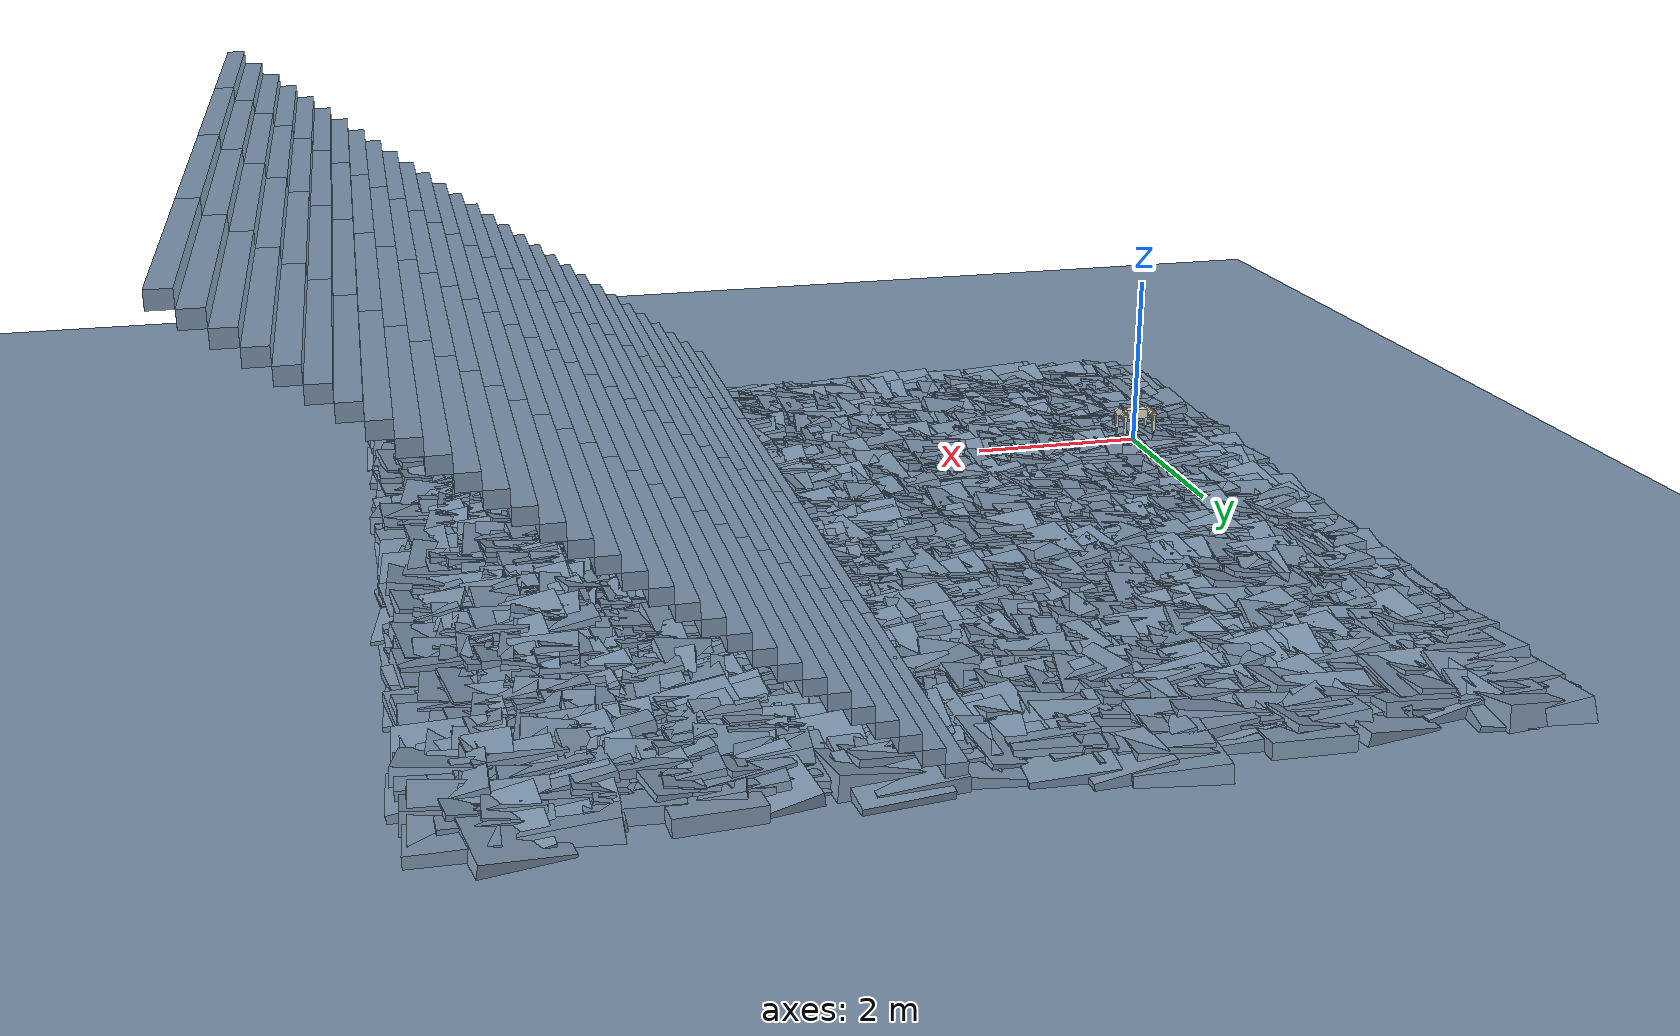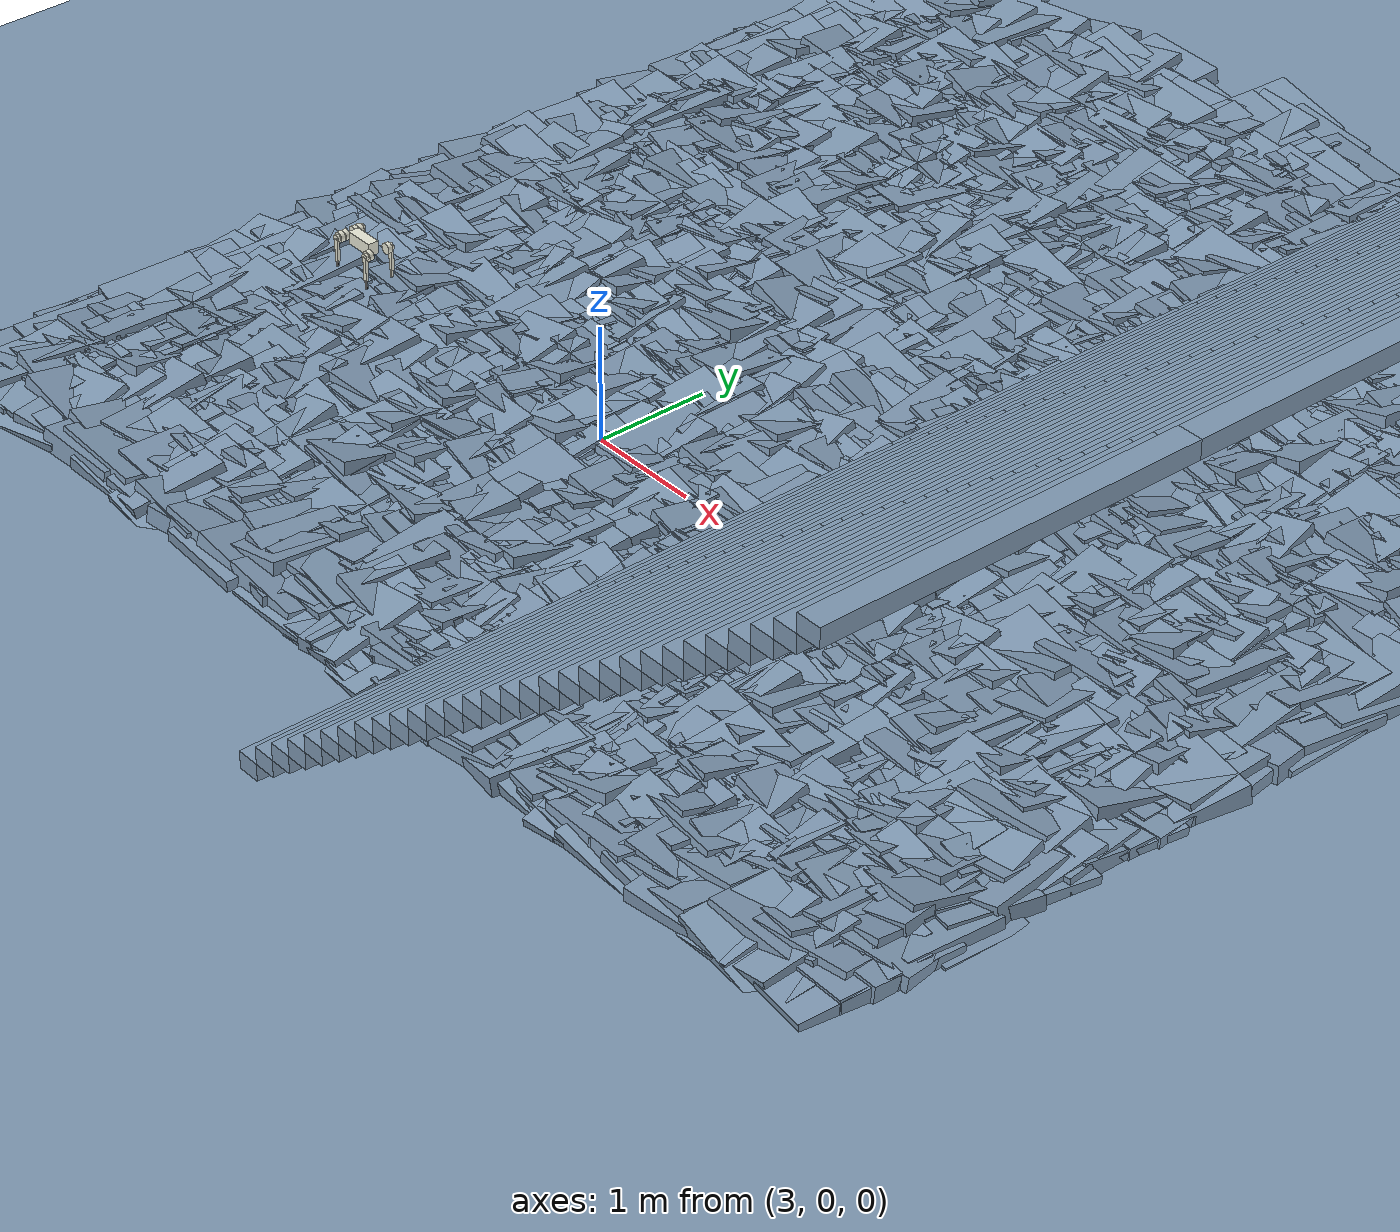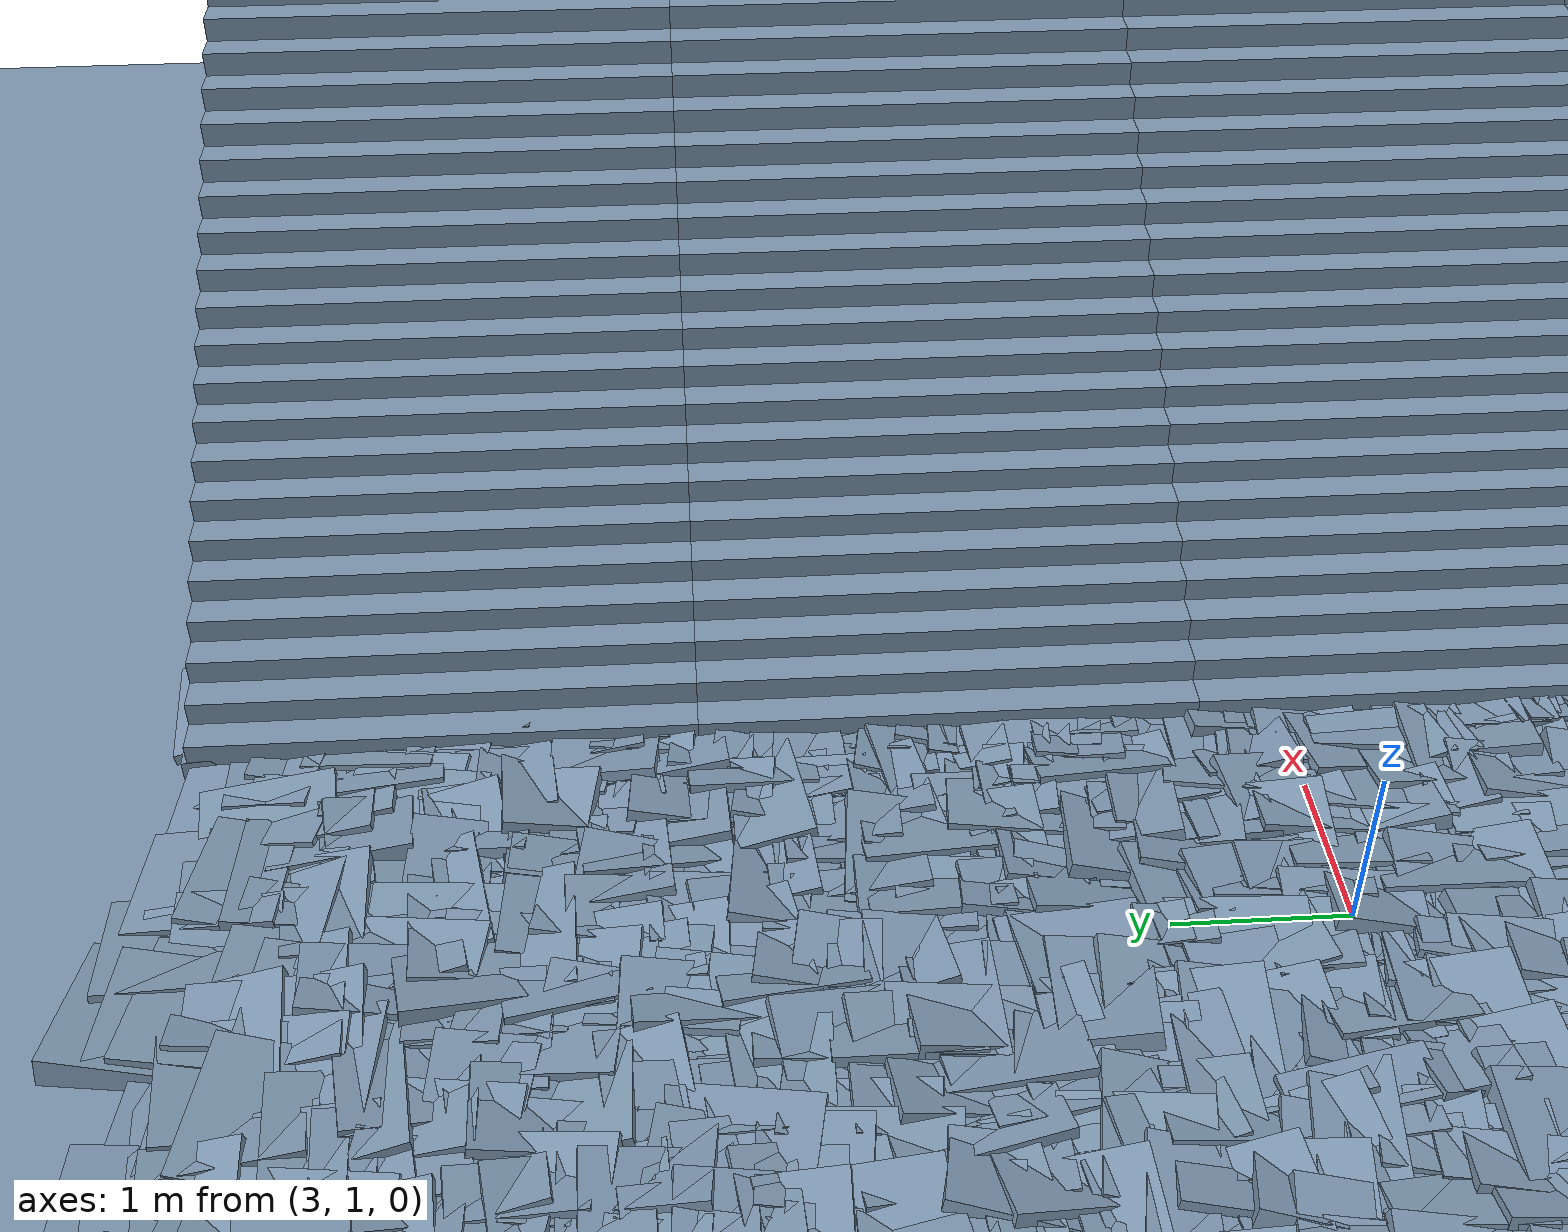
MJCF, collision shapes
<mujoco>
    <include file="scene_terrain.xml"/>
    <include file="dependencies.xml"/>

    <worldbody>
		<include file="go1_.xml" />
    </worldbody>

 	<actuator>
		<motor name="FL_hip_joint" joint="FL_hip_joint" gear="1"/>
		<motor name="FL_thigh_joint" joint="FL_thigh_joint" gear="1"/>
		<motor name="FL_calf_joint" joint="FL_calf_joint" gear="1"/>

		<motor name="FR_hip_joint" joint="FR_hip_joint" gear="1"/>
		<motor name="FR_thigh_joint" joint="FR_thigh_joint" gear="1"/>
		<motor name="FR_calf_joint" joint="FR_calf_joint" gear="1"/>

		<motor name="RL_hip_joint" joint="RL_hip_joint" gear="1"/>
		<motor name="RL_thigh_joint" joint="RL_thigh_joint" gear="1"/>
		<motor name="RL_calf_joint" joint="RL_calf_joint" gear="1"/>

		<motor name="RR_hip_joint" joint="RR_hip_joint" gear="1"/>
		<motor name="RR_thigh_joint" joint="RR_thigh_joint" gear="1"/>
		<motor name="RR_calf_joint" joint="RR_calf_joint" gear="1"/>
    </actuator>

    <sensor>
        <actuatorpos name='FL_hip_joint_p'  actuator='FL_hip_joint' user='13'/>
		<actuatorpos name='FL_thigh_joint_p'  actuator='FL_thigh_joint' user='13'/>
		<actuatorpos name='FL_calf_joint_p'  actuator='FL_calf_joint' user='13'/>

		<actuatorpos name='FR_hip_joint_p'  actuator='FR_hip_joint' user='13'/>
		<actuatorpos name='FR_thigh_joint_p'  actuator='FR_thigh_joint' user='13'/>
		<actuatorpos name='FR_calf_joint_p'  actuator='FR_calf_joint' user='13'/>

		<actuatorpos name='RL_hip_joint_p'  actuator='RL_hip_joint' user='13'/>
		<actuatorpos name='RL_thigh_joint_p'  actuator='RL_thigh_joint' user='13'/>
		<actuatorpos name='RL_calf_joint_p'  actuator='RL_calf_joint' user='13'/>

		<actuatorpos name='RR_hip_joint_p'  actuator='RR_hip_joint' user='13'/>
		<actuatorpos name='RR_thigh_joint_p'  actuator='RR_thigh_joint' user='13'/>
		<actuatorpos name='RR_calf_joint_p'  actuator='RR_calf_joint' user='13'/>

        <actuatorvel name='FL_hip_joint_v'  actuator='FL_hip_joint' user='13'/>
        <actuatorvel name='FL_thigh_joint_v'  actuator='FL_thigh_joint' user='13'/>
        <actuatorvel name='FL_calf_joint_v'  actuator='FL_calf_joint' user='13'/>

        <actuatorvel name='FR_hip_joint_v'  actuator='FR_hip_joint' user='13'/>
        <actuatorvel name='FR_thigh_joint_v'  actuator='FR_thigh_joint' user='13'/>
        <actuatorvel name='FR_calf_joint_v'  actuator='FR_calf_joint' user='13'/>

        <actuatorvel name='RL_hip_joint_v'  actuator='RL_hip_joint' user='13'/>
        <actuatorvel name='RL_thigh_joint_v'  actuator='RL_thigh_joint' user='13'/>
        <actuatorvel name='RL_calf_joint_v'  actuator='RL_calf_joint' user='13'/>

        <actuatorvel name='RR_hip_joint_v'  actuator='RR_hip_joint' user='13'/>
        <actuatorvel name='RR_thigh_joint_v'  actuator='RR_thigh_joint' user='13'/>
        <actuatorvel name='RR_calf_joint_v'  actuator='RR_calf_joint' user='13'/>

		<actuatorfrc name='FL_hip_joint_f'  actuator='FL_hip_joint'  user='13' noise='1e-3'/>
		<actuatorfrc name='FL_thigh_joint_f'  actuator='FL_thigh_joint'  user='13' noise='1e-3'/>
		<actuatorfrc name='FL_calf_joint_f'  actuator='FL_calf_joint'  user='13' noise='1e-3'/>

		<actuatorfrc name='FR_hip_joint_f'  actuator='FR_hip_joint'  user='13' noise='1e-3'/>
		<actuatorfrc name='FR_thigh_joint_f'  actuator='FR_thigh_joint'  user='13' noise='1e-3'/>
		<actuatorfrc name='FR_calf_joint_f'  actuator='FR_calf_joint'  user='13' noise='1e-3'/>

		<actuatorfrc name='RL_hip_joint_f'  actuator='RL_hip_joint'  user='13' noise='1e-3'/>
		<actuatorfrc name='RL_thigh_joint_f'  actuator='RL_thigh_joint'  user='13' noise='1e-3'/>
		<actuatorfrc name='RL_calf_joint_f'  actuator='RL_calf_joint'  user='13' noise='1e-3'/>

        <actuatorfrc name='RR_hip_joint_f'  actuator='RR_hip_joint'  user='13' noise='1e-3'/>
		<actuatorfrc name='RR_thigh_joint_f'  actuator='RR_thigh_joint'  user='13' noise='1e-3'/>
		<actuatorfrc name='RR_calf_joint_f'  actuator='RR_calf_joint'  user='13' noise='1e-3'/>

        <framequat     name='orientation' objtype='site' noise='0.001' objname='imu'/>
        <framepos      name='position' objtype='site' noise='0.001' objname='imu'/>
        <gyro          name='angular-velocity'    site='imu' noise='0.005'/>
        <velocimeter   name='linear-velocity'     site='imu' noise='0.001'/>
        <accelerometer name='linear-acceleration' site='imu' noise='0.005'/>
        <magnetometer  name='magnetometer'        site='imu'/>

    </sensor>
</mujoco>

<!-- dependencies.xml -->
<mujocoinclude>
    <compiler angle="radian" inertiafromgeom="auto" inertiagrouprange="4 5" meshdir="/home/jiaojunpeng/isaac/LocomotionWithNP3O-masterV5/LocomotionWithNP3O-master/resources/go1/meshes"/>
    <asset>
        <mesh name="trunk" file="trunk.stl" />
        <mesh name="hip" file="hip.stl" />
        <mesh name="thigh_mirror" file="thigh_mirror.stl" />
        <mesh name="calf" file="calf.stl" />
        <mesh name="thigh" file="thigh.stl" />

        <texture name="texplane" type="2d" builtin="checker" rgb1=".2 .3 .4" rgb2=".1 0.15 0.2"
        width="512" height="512" mark="cross" markrgb=".8 .8 .8"/>
        <texture name="texplane2" type="2d" builtin="checker" rgb1="1 0.3137 0.1843" rgb2="0.0 0.30196 0.38039"
        width="512" height="512" mark="cross" markrgb=".8 .8 .8"/>

        <material name="matplane" reflectance="0." texture="texplane" texrepeat="1 1" texuniform="true"/>
        <material name="matplane2" reflectance="0.1" texture="texplane2" texrepeat="1 1" texuniform="true"/>

        <hfield name='hf0' nrow='200' ncol='200' size="5 5 0.2 .1"/>
        <hfield file="../terrain/uneven.png" name="hf1" ncol="0" nrow="0" size="50 50 0.35 0.1" />
    </asset>

</mujocoinclude>

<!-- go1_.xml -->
<mujocoinclude>

    <body name="trunk" pos="0 0 0.35">
        <inertial pos="0.0116053 0.00442221 0.000106692" quat="0.0111438 0.707126 -0.00935374 0.706938" mass="4.801" diaginertia="0.0447997 0.0366257 0.0162187" />
        <joint name="float_base" type="free"/>
        <geom type="mesh" contype="0" conaffinity="0" group="1" rgba="0.913725 0.913725 0.847059 1" mesh="trunk" />
        <geom size="0.13 0.04675 0.057" type="box" rgba="0.913725 0.913725 0.847059 1" />
        <geom size="0.0005 0.0005 0.0005" pos="-0.01592 -0.06659 -0.00617" type="box" contype="0" conaffinity="0" group="1" rgba="0.8 0 0 0" />
        <geom size="0.0005 0.0005 0.0005" pos="-0.01592 -0.06659 -0.00617" type="box" rgba="0.8 0 0 0" />
        <site name="imu" pos="0 0 0"/>

        <body name="FL_hip" pos="0.1881 0.04675 0">
            <inertial pos="-0.00406411 0.0193463 4.50733e-06" quat="0.531662 0.467526 -0.530431 0.466259" mass="0.679292" diaginertia="0.00131334 0.00122648 0.000728484" />
            <joint name="FL_hip_joint" pos="0 0 0" axis="1 0 0" limited="true" range="-0.802851 0.802851" />
            <geom type="mesh" contype="0" conaffinity="0" group="1" rgba="0.913725 0.913725 0.847059 1" mesh="hip" />
            <geom size="0.046 0.02" pos="0 0.045 0" quat="0.707107 0.707107 0 0" type="cylinder" rgba="0.913725 0.913725 0.847059 0" />
            <geom size="0.031 0.02" pos="0 0.07 0" quat="0.707107 0.707107 0 0" type="cylinder" rgba="0.913725 0.913725 0.847059 0" />

            <body name="FL_thigh" pos="0 0.08 0">
                <inertial pos="-0.003468 -0.018947 -0.032736" quat="0.999266 -0.00067676 -0.0382978 -0.000639813" mass="0.898919" diaginertia="0.00542178 0.00514246 0.000998869" />
                <joint name="FL_thigh_joint" pos="0 0 0" axis="0 1 0" limited="true" range="-1.0472 4.18879" />
                <geom type="mesh" contype="0" conaffinity="0" group="1" rgba="0.913725 0.913725 0.847059 1" mesh="thigh" />
                <geom size="0.1065 0.01225 0.017" pos="0 0 -0.1065" quat="0.707107 0 0.707107 0" type="box" rgba="0.913725 0.913725 0.847059 0" />
                <body name="FL_calf" pos="0 0 -0.213">
                    <inertial pos="0.00455603 0.0009473 -0.147239" quat="0.762045 0.00970173 0.0180098 0.647201" mass="0.218015" diaginertia="0.00399678 0.00398122 3.99428e-05" />
                    <joint name="FL_calf_joint" pos="0 0 0" axis="0 1 0" limited="true" range="-2.69653 -0.916298" />
                    <geom type="mesh" contype="0" conaffinity="0" group="1" rgba="0 0 0 1" mesh="calf" />
                    <geom size="0.1065 0.008 0.008" pos="0 0 -0.1065" quat="0.707107 0 0.707107 0" type="box" rgba="0.913725 0.913725 0.847059 0" />
                    <geom size="0.01" pos="0 0 -0.213" contype="0" conaffinity="0" group="1" rgba="0 0 0 1" />
                    <geom size="0.02" pos="0 0 -0.213" rgba="0 0 0 1" />
                </body>
            </body>
        </body>

        <body name="FR_hip" pos="0.1881 -0.04675 0">
            <inertial pos="-0.00406411 -0.0193463 4.50733e-06" quat="0.467526 0.531662 -0.466259 0.530431" mass="0.679292" diaginertia="0.00131334 0.00122648 0.000728484" />
            <joint name="FR_hip_joint" pos="0 0 0" axis="1 0 0" limited="true" range="-0.802851 0.802851" />
            <geom quat="0 1 0 0" type="mesh" contype="0" conaffinity="0" group="1" rgba="0.913725 0.913725 0.847059 1" mesh="hip" />
            <geom size="0.046 0.02" pos="0 -0.045 0" quat="0.707107 0.707107 0 0" type="cylinder" rgba="0.913725 0.913725 0.847059 0" />
            <geom size="0.031 0.02" pos="0 -0.07 0" quat="0.707107 0.707107 0 0" type="cylinder" rgba="0.913725 0.913725 0.847059 0" />

            <body name="FR_thigh" pos="0 -0.08 0">
                <inertial pos="-0.003468 0.018947 -0.032736" quat="0.999266 0.00067676 -0.0382978 0.000639813" mass="0.898919" diaginertia="0.00542178 0.00514246 0.000998869" />
                <joint name="FR_thigh_joint" pos="0 0 0" axis="0 1 0" limited="true" range="-1.0472 4.18879" />
                <geom type="mesh" contype="0" conaffinity="0" group="1" rgba="0.913725 0.913725 0.847059 1" mesh="thigh_mirror" />
                <geom size="0.1065 0.01225 0.017" pos="0 0 -0.1065" quat="0.707107 0 0.707107 0" type="box" rgba="0.913725 0.913725 0.847059 0" />
                <body name="FR_calf" pos="0 0 -0.213">
                    <inertial pos="0.00455603 0.0009473 -0.147239" quat="0.762045 0.00970173 0.0180098 0.647201" mass="0.218015" diaginertia="0.00399678 0.00398122 3.99428e-05" />
                    <joint name="FR_calf_joint" pos="0 0 0" axis="0 1 0" limited="true" range="-2.69653 -0.916298" />
                    <geom type="mesh" contype="0" conaffinity="0" group="1" rgba="0 0 0 1" mesh="calf" />
                    <geom size="0.1065 0.008 0.008" pos="0 0 -0.1065" quat="0.707107 0 0.707107 0" type="box" rgba="0 0 0 0" />
                    <geom size="0.01" pos="0 0 -0.213" contype="0" conaffinity="0" group="1" rgba="0 0 0 1" />
                    <geom size="0.02" pos="0 0 -0.213" rgba="0 0 0 1" />
                </body>
            </body>
        </body>

        <body name="RL_hip" pos="-0.1881 0.04675 0">
            <inertial pos="0.00406411 0.0193463 4.50733e-06" quat="0.466259 0.530431 -0.467526 0.531662" mass="0.679292" diaginertia="0.00131334 0.00122648 0.000728484" />
            <joint name="RL_hip_joint" pos="0 0 0" axis="1 0 0" limited="true" range="-0.802851 0.802851"  />
            <geom quat="0 0 1 0" type="mesh" contype="0" conaffinity="0" group="1" rgba="0.913725 0.913725 0.847059 1" mesh="hip" />
            <geom size="0.046 0.02" quat="0.707107 0.707107 0 0" type="cylinder" rgba="0.913725 0.913725 0.847059 1" />
            <geom size="0.046 0.02" pos="0 0.045 0" quat="0.707107 0.707107 0 0" type="cylinder" rgba="0.913725 0.913725 0.847059 0" />
            <geom size="0.031 0.02" pos="0 0.07 0" quat="0.707107 0.707107 0 0" type="cylinder" rgba="0.913725 0.913725 0.847059 0" />

            <body name="RL_thigh" pos="0 0.08 0">
                <inertial pos="-0.003468 -0.018947 -0.032736" quat="0.999266 -0.00067676 -0.0382978 -0.000639813" mass="0.898919" diaginertia="0.00542178 0.00514246 0.000998869" />
                <joint name="RL_thigh_joint" pos="0 0 0" axis="0 1 0" limited="true" range="-1.0472 4.18879" />
                <geom type="mesh" contype="0" conaffinity="0" group="1" rgba="0.913725 0.913725 0.847059 1" mesh="thigh" />
                <geom size="0.1065 0.01225 0.017" pos="0 0 -0.1065" quat="0.707107 0 0.707107 0" type="box" rgba="0.913725 0.913725 0.847059 0" />
                <body name="RL_calf" pos="0 0 -0.213">
                    <inertial pos="0.00455603 0.0009473 -0.147239" quat="0.762045 0.00970173 0.0180098 0.647201" mass="0.218015" diaginertia="0.00399678 0.00398122 3.99428e-05" />
                    <joint name="RL_calf_joint" pos="0 0 0" axis="0 1 0" limited="true" range="-2.69653 -0.916298" />
                    <geom type="mesh" contype="0" conaffinity="0" group="1" rgba="0 0 0 1" mesh="calf" />
                    <geom size="0.1065 0.008 0.008" pos="0 0 -0.1065" quat="0.707107 0 0.707107 0" type="box" rgba="0 0 0 0" />
                    <geom size="0.01" pos="0 0 -0.213" contype="0" conaffinity="0" group="1" rgba="0 0 0 1" />
                    <geom size="0.02" pos="0 0 -0.213" rgba="0 0 0 1" />
                </body>
            </body>
        </body>

        <body name="RR_hip" pos="-0.1881 -0.04675 0">
            <inertial pos="0.00406411 -0.0193463 4.50733e-06" quat="0.530431 0.466259 -0.531662 0.467526" mass="0.679292" diaginertia="0.00131334 0.00122648 0.000728484" />
            <joint name="RR_hip_joint" pos="0 0 0" axis="1 0 0" limited="true" range="-0.802851 0.802851" />
            <geom quat="0 0 0 -1" type="mesh" contype="0" conaffinity="0" group="1" rgba="0.913725 0.913725 0.847059 1" mesh="hip" />
            <geom size="0.046 0.02" quat="0.707107 0.707107 0 0" type="cylinder" rgba="0.913725 0.913725 0.847059 1" />
            <geom size="0.046 0.02" pos="0 -0.045 0" quat="0.707107 0.707107 0 0" type="cylinder" rgba="0.913725 0.913725 0.847059 0" />
            <geom size="0.031 0.02" pos="0 -0.07 0" quat="0.707107 0.707107 0 0" type="cylinder" rgba="0.913725 0.913725 0.847059 0" />

            <body name="RR_thigh" pos="0 -0.08 0">
                <inertial pos="-0.003468 0.018947 -0.032736" quat="0.999266 0.00067676 -0.0382978 0.000639813" mass="0.898919" diaginertia="0.00542178 0.00514246 0.000998869" />
                <joint name="RR_thigh_joint" pos="0 0 0" axis="0 1 0" limited="true" range="-1.0472 4.18879" />
                <geom type="mesh" contype="0" conaffinity="0" group="1" rgba="0.913725 0.913725 0.847059 1" mesh="thigh_mirror" />
                <geom size="0.1065 0.01225 0.017" pos="0 0 -0.1065" quat="0.707107 0 0.707107 0" type="box" rgba="0.913725 0.913725 0.847059 0" />
                <body name="RR_calf" pos="0 0 -0.213">
                    <inertial pos="0.00455603 0.0009473 -0.147239" quat="0.762045 0.00970173 0.0180098 0.647201" mass="0.218015" diaginertia="0.00399678 0.00398122 3.99428e-05" />
                    <joint name="RR_calf_joint" pos="0 0 0" axis="0 1 0" limited="true" range="-2.69653 -0.916298" />
                    <geom type="mesh" contype="0" conaffinity="0" group="1" rgba="0 0 0 1" mesh="calf" />
                    <geom size="0.1065 0.008 0.008" pos="0 0 -0.1065" quat="0.707107 0 0.707107 0" type="box" rgba="0 0 0 0" />
                    <geom size="0.01" pos="0 0 -0.213" contype="0" conaffinity="0" group="1" rgba="0 0 0 1" />
                    <geom size="0.02" pos="0 0 -0.213" rgba="0 0 0 1" />
                </body>
            </body>
        </body>
    </body>

</mujocoinclude>
